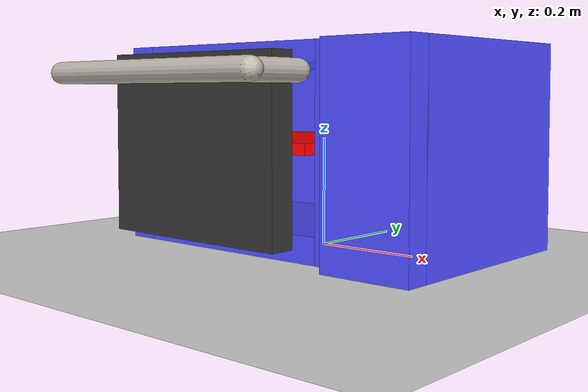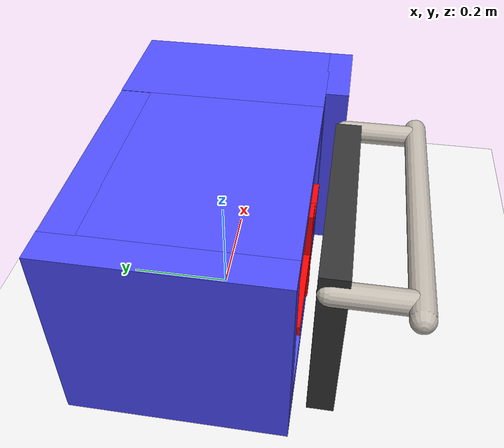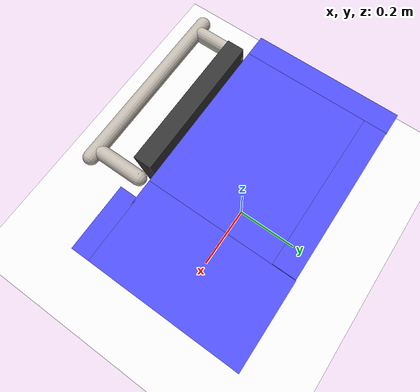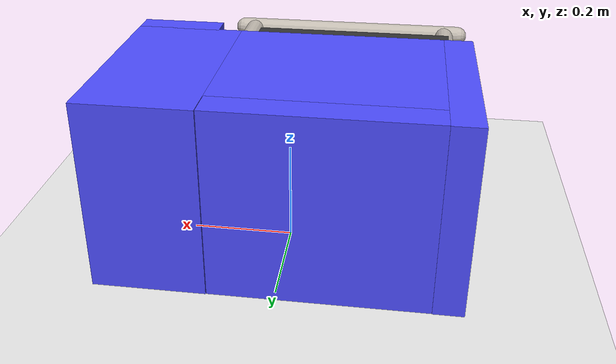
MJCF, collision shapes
<?xml version="1.0"?>
<mujoco model="microwave">
  <compiler angle="radian"/>
  <include file="../scenes/basic_scene.xml"/>
  <include file="../kitchen/assets/microwave_asset.xml"/>
  <worldbody>
    <body>
      <include file="../kitchen/assets/toaster_chain.xml"/>
    </body>
  </worldbody>
</mujoco>

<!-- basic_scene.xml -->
<mujocoinclude>
  <asset>
    <texture name="skybox" type="skybox" builtin="gradient" rgb1=".08 .09 .10" rgb2="0 0 0" width="800" height="800" mark="random" markrgb=".8 .8 .8"/>
    <texture name="texplane" type="2d" height="1" width="1" file="../scenes/textures/white_marble_tile2.png"/>
    <material name="MatPlane" reflectance="0.05" texture="texplane" texrepeat="4 4" texuniform="true"/>
  </asset>
  <visual>
    <map fogstart="1.5" fogend="5" force="0.1" znear="0.1"/>
    <quality shadowsize="4096" offsamples="4"/>
  </visual>
  <worldbody>
    <light directional="true" diffuse=".3 .3 .3" specular="0.3 0.3 0.3" pos="-1 -1 1" dir="1 1 -1"/>
    <light directional="true" diffuse=".3 .3 .3" specular="0.3 0.3 0.3" pos="1 -1 1" dir="-1 1 -1"/>
    <light directional="true" diffuse=".3 .3 .3" specular="0.3 0.3 0.3" pos="0 1 1" dir="0 -1 -1"/>
    <geom name="floor" pos="0 0 0" size="5 5 .1" conaffinity="1" contype="1" type="plane" material="MatPlane" condim="3"/>
    <site name="xaxis" pos=".5 0 0" size=".005 .5" type="capsule" rgba="1 0 0 .25" euler="0 1.57 0" group="3"/>
    <site name="yaxis" pos="0 .5 0" size=".005 .5" type="capsule" rgba="0 1 0 .25" euler="1.57 0 0" group="3"/>
  </worldbody>
</mujocoinclude>

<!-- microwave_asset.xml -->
<mujocoinclude>
  <compiler inertiafromgeom="auto" inertiagrouprange="4 4" angle="radian"/>
  <asset>
    <mesh file="../kitchen/meshes/micro.stl" name="micro"/>
    <mesh file="../kitchen/meshes/microdoor.stl" name="microdoor"/>
    <mesh file="../kitchen/meshes/microbutton.stl" name="microbutton"/>
    <mesh file="../kitchen/meshes/microfeet.stl" name="microfeet"/>
    <mesh file="../kitchen/meshes/microhandle.stl" name="microhandle"/>
    <mesh file="../kitchen/meshes/microwindow.stl" name="microwindow"/>
    <texture name="T_micro_metal" type="cube" height="1" width="1" file="../kitchen/textures/metal1.png"/>
    <material name="micro_metal" rgba="1 1 1 1" texture="T_micro_metal" texrepeat="3 3" reflectance="1" shininess="1" texuniform="false"/>
    <material name="micro_black" rgba=".2 .2 .2 1" reflectance="1" shininess="1"/>
    <material name="micro_window" rgba=".4 .4 .4 .25" reflectance="1" shininess="1"/>
    <material name="micro_collision_blue" rgba="0.3 0.3 1.0 0.5" shininess="0" specular="0"/>
  </asset>
  <default>
    <default class="microwave">
      <joint damping="2" frictionloss="2" armature=".01" limited="true"/>
      <geom conaffinity="0" contype="0" group="1" material="micro_black" type="mesh"/>
      <default class="micro_collision">
        <geom conaffinity="1" condim="3" contype="0" group="4" margin="0.001" material="micro_collision_blue" solimp=".8 .9 .01" solref=".02 1"/>
      </default>
    </default>
  </default>
</mujocoinclude>

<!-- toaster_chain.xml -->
<mujocoinclude>
  <body name="microroot" childclass="microwave">
    <geom mesh="micro"/>
    <geom material="micro_metal" mesh="microbutton"/>
    <geom material="micro_metal" mesh="microfeet"/>
    <geom class="micro_collision" pos="-0.316 0.023 0.187" size="0.029 0.199 0.187" type="box" mass=".5"/>
    <geom class="micro_collision" pos="0.236 0.023 0.187" size="0.109 0.199 0.187" type="box" mass=".5"/>
    <geom class="micro_collision" pos="-0.081 0.191 0.187" size="0.207 0.03 0.187" type="box" mass=".5"/>
    <geom class="micro_collision" pos="-0.08 -0.007 0.355" size="0.207 0.169 0.019" type="box" mass=".5"/>
    <geom class="micro_collision" pos="-0.08 -0.008 0.024" size="0.207 0.168 0.024" type="box" mass=".5"/>
    <geom class="micro_collision" pos="0.26 -0.197 0.187" size="0.085 0.024 0.187" type="box" mass=".5"/>
    <body name="microdoorroot" pos="-0.345 -0.206 0.192">
      <joint axis="1 0 0" limited="true" name="microjoint" pos="0 0 -0.15" range="0 1.5" frictionloss="100" damping="100"/>
      <geom mesh="microdoor" pos="0.345 0.176 -0.192"/>
      <geom material="micro_window" mesh="microwindow" pos="0.345 0.176 -0.192"/>
      <geom conaffinity="1" condim="1" contype="1" group="4" size="0.2 0.024 0.165" type="box" mass="0.001" pos="0.245 -0.02 0.0"/>
      <geom material="micro_metal" euler="0 1.57 0" pos="0.26 -0.148 0.13" size="0.02 0.24" type="capsule"/>
      <geom material="micro_metal" euler="1.57 0 0" pos="0.475 -0.075 .13" size="0.02 0.06" type="capsule"/>
      <geom material="micro_metal" euler="1.57 0 0" pos="0.05 -0.075 .13" size="0.02 0.06" type="capsule"/>

      <geom class="micro_collision" euler="0 1.57 0" pos="0.26 -0.148 0.13" size="0.02 0.24" type="capsule" mass="0.001"/>
      <geom class="micro_collision" euler="1.57 0 0" pos="0.475 -0.075 .13" size="0.02 0.06" type="capsule" mass="0.001"/>
      <geom class="micro_collision" euler="1.57 0 0" pos="0.05 -0.075 .13" size="0.02 0.06" type="capsule" mass="0.001"/>

      <site type="sphere" name="toaster_site" pos="0.28 -0.108 0.13" size=".01" group="3" rgba="1 1 0 1"/>
    </body>

    <body name="tray" pos="-0.345 -0.156 0.192">
      <joint axis="0 1 0" type="slide" name="tray" pos="0 0 0" range="-0.25 0"/>
      <geom type="box" size="0.188 0.01 0.2" rgba="1 0 0 1" pos="0.265 0.176 0.0" euler="1.57 0 0"/>
      <geom type="box" size="0.02 0.1 0.05" rgba="1 0 0 1" pos="0.265 .025 0.0" euler="1.57 0 0"/>

      <geom class="micro_collision"  type="box" size="0.188 0.01 0.2" pos="0.265 0.176 0.0" euler="1.57 0 0" mass="0.20"/>
      <geom class="micro_collision"  type="box" size="0.02 0.1 0.05" pos="0.265 .025 0.0" euler="1.57 0 0" mass="0.20"/>
      <site type="sphere" name="tray_site" pos="0.265 .025 0.0" size="0.01" group="3" rgba="1 1 0 1"/>
    </body>
  </body>
</mujocoinclude>
